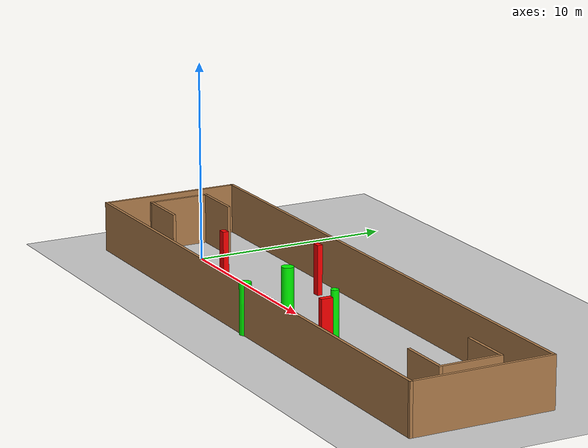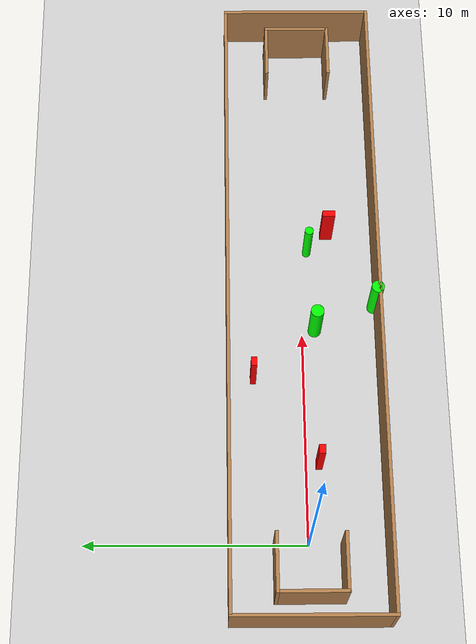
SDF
<sdf version="1.7">
 <world name="default">
  <light name="sun" type="directional">
   <pose>0 0 10 0 -0 0</pose>
   <diffuse>0.8 0.8 0.8 1</diffuse>
   <specular>0.2 0.2 0.2 1</specular>
   <attenuation>
    <range>1000</range>
    <constant>0.9</constant>
    <linear>0.01</linear>
    <quadratic>0.001</quadratic>
   </attenuation>
   <direction>-0.5 0.1 -0.9</direction>
   <spot><inner_angle>0</inner_angle><outer_angle>0</outer_angle><falloff>0</falloff></spot>
  </light>
  <model name="ground_plane">
   <static>1</static>
   <link name="link">
    <collision name="collision">
     <geometry><plane><normal>0 0 1</normal><size>100 100</size></plane></geometry>
     <surface>
      <contact><collide_bitmask>65535</collide_bitmask></contact>
      <friction><ode><mu>100</mu><mu2>50</mu2></ode></friction>
     </surface>
    </collision>
    <visual name="visual">
     <cast_shadows>0</cast_shadows>
     <geometry><plane><normal>0 0 1</normal><size>100 100</size></plane></geometry>
     <material>
      <script><uri>file://media/materials/scripts/gazebo.material</uri><name>Gazebo/Grey</name></script>
     </material>
    </visual>
   </link>
  </model>
  <gravity>0 0 -9.8</gravity>
  <magnetic_field>6e-06 2.3e-05 -4.2e-05</magnetic_field>
  <atmosphere type="adiabatic"/>
  <physics type="ode">
   <max_step_size>0.001</max_step_size>
   <real_time_factor>1</real_time_factor>
   <real_time_update_rate>1000</real_time_update_rate>
  </physics>
  <scene><ambient>0.4 0.4 0.4 1</ambient><background>0.7 0.7 0.7 1</background><shadows>1</shadows></scene>
  <spherical_coordinates>
   <surface_model>EARTH_WGS84</surface_model>
   <latitude_deg>0</latitude_deg>
   <longitude_deg>0</longitude_deg>
   <elevation>0</elevation>
   <heading_deg>0</heading_deg>
  </spherical_coordinates>
  <model name="my_base_walls">
   <link name="Wall_0">
    <collision name="Wall_0_Collision">
     <geometry><box><size>7.15 0.15 2.5</size></box></geometry>
     <pose>0 0 1.25 0 -0 0</pose>
    </collision>
    <visual name="Wall_0_Visual">
     <pose>0 0 1.25 0 -0 0</pose>
     <geometry><box><size>7.15 0.15 2.5</size></box></geometry>
     <material>
      <script><uri>file://media/materials/scripts/gazebo.material</uri><name>Gazebo/Wood</name></script>
      <ambient>1 1 1 1</ambient>
     </material>
     <meta><layer>0</layer></meta>
    </visual>
    <pose>-15 0 0 0 -0 1.5708</pose>
   </link>
   <link name="Wall_10">
    <collision name="Wall_10_Collision">
     <geometry><box><size>2.65 0.15 2.5</size></box></geometry>
     <pose>0 0 1.25 0 -0 0</pose>
    </collision>
    <visual name="Wall_10_Visual">
     <pose>0 0 1.25 0 -0 0</pose>
     <geometry><box><size>2.65 0.15 2.5</size></box></geometry>
     <material>
      <script><uri>file://media/materials/scripts/gazebo.material</uri><name>Gazebo/Wood</name></script>
      <ambient>1 1 1 1</ambient>
     </material>
     <meta><layer>0</layer></meta>
    </visual>
    <pose>-12.75 -1.5 0 0 -0 0</pose>
   </link>
   <link name="Wall_12">
    <collision name="Wall_12_Collision">
     <geometry><box><size>2.65 0.15 2.5</size></box></geometry>
     <pose>0 0 1.25 0 -0 0</pose>
    </collision>
    <visual name="Wall_12_Visual">
     <pose>0 0 1.25 0 -0 0</pose>
     <geometry><box><size>2.65 0.15 2.5</size></box></geometry>
     <material>
      <script><uri>file://media/materials/scripts/gazebo.material</uri><name>Gazebo/Wood</name></script>
      <ambient>1 1 1 1</ambient>
     </material>
     <meta><layer>0</layer></meta>
    </visual>
    <pose>-12.75 1.5 0 0 -0 0</pose>
   </link>
   <link name="Wall_14">
    <collision name="Wall_14_Collision">
     <geometry><box><size>3.15 0.15 2.5</size></box></geometry>
     <pose>0 0 1.25 0 -0 0</pose>
    </collision>
    <visual name="Wall_14_Visual">
     <pose>0 0 1.25 0 -0 0</pose>
     <geometry><box><size>3.15 0.15 2.5</size></box></geometry>
     <material>
      <script><uri>file://media/materials/scripts/gazebo.material</uri><name>Gazebo/Wood</name></script>
      <ambient>1 1 1 1</ambient>
     </material>
     <meta><layer>0</layer></meta>
    </visual>
    <pose>14 0 0 0 -0 -1.5708</pose>
   </link>
   <link name="Wall_15">
    <collision name="Wall_15_Collision">
     <geometry><box><size>2.65 0.15 2.5</size></box></geometry>
     <pose>0 0 1.25 0 -0 0</pose>
    </collision>
    <visual name="Wall_15_Visual">
     <pose>0 0 1.25 0 -0 0</pose>
     <geometry><box><size>2.65 0.15 2.5</size></box></geometry>
     <material>
      <script><uri>file://media/materials/scripts/gazebo.material</uri><name>Gazebo/Wood</name></script>
      <ambient>1 1 1 1</ambient>
     </material>
     <meta><layer>0</layer></meta>
    </visual>
    <pose>12.75 -1.5 0 0 -0 3.14159</pose>
   </link>
   <link name="Wall_17">
    <collision name="Wall_17_Collision">
     <geometry><box><size>2.65 0.15 2.5</size></box></geometry>
     <pose>0 0 1.25 0 -0 0</pose>
    </collision>
    <visual name="Wall_17_Visual">
     <pose>0 0 1.25 0 -0 0</pose>
     <geometry><box><size>2.65 0.15 2.5</size></box></geometry>
     <material>
      <script><uri>file://media/materials/scripts/gazebo.material</uri><name>Gazebo/Wood</name></script>
      <ambient>1 1 1 1</ambient>
     </material>
     <meta><layer>0</layer></meta>
    </visual>
    <pose>12.75 1.5 0 0 -0 3.14159</pose>
   </link>
   <link name="Wall_2">
    <collision name="Wall_2_Collision">
     <geometry><box><size>30.15 0.15 2.5</size></box></geometry>
     <pose>0 0 1.25 0 -0 0</pose>
    </collision>
    <visual name="Wall_2_Visual">
     <pose>0 0 1.25 0 -0 0</pose>
     <geometry><box><size>30.15 0.15 2.5</size></box></geometry>
     <material>
      <script><uri>file://media/materials/scripts/gazebo.material</uri><name>Gazebo/Wood</name></script>
      <ambient>1 1 1 1</ambient>
     </material>
     <meta><layer>0</layer></meta>
    </visual>
    <pose>-0 -3.5 0 0 -0 0</pose>
   </link>
   <link name="Wall_4">
    <collision name="Wall_4_Collision">
     <geometry><box><size>30.15 0.15 2.5</size></box></geometry>
     <pose>0 0 1.25 0 -0 0</pose>
    </collision>
    <visual name="Wall_4_Visual">
     <pose>0 0 1.25 0 -0 0</pose>
     <geometry><box><size>30.15 0.15 2.5</size></box></geometry>
     <material>
      <script><uri>file://media/materials/scripts/gazebo.material</uri><name>Gazebo/Wood</name></script>
      <ambient>1 1 1 1</ambient>
     </material>
     <meta><layer>0</layer></meta>
    </visual>
    <pose>-0 3.5 0 0 -0 0</pose>
   </link>
   <link name="Wall_6">
    <collision name="Wall_6_Collision">
     <geometry><box><size>7.15 0.15 2.5</size></box></geometry>
     <pose>0 0 1.25 0 -0 0</pose>
    </collision>
    <visual name="Wall_6_Visual">
     <pose>0 0 1.25 0 -0 0</pose>
     <geometry><box><size>7.15 0.15 2.5</size></box></geometry>
     <material>
      <script><uri>file://media/materials/scripts/gazebo.material</uri><name>Gazebo/Wood</name></script>
      <ambient>1 1 1 1</ambient>
     </material>
     <meta><layer>0</layer></meta>
    </visual>
    <pose>15 0 0 0 -0 -1.5708</pose>
   </link>
   <link name="Wall_9">
    <collision name="Wall_9_Collision">
     <geometry><box><size>3.15 0.15 2.5</size></box></geometry>
     <pose>0 0 1.25 0 -0 0</pose>
    </collision>
    <visual name="Wall_9_Visual">
     <pose>0 0 1.25 0 -0 0</pose>
     <geometry><box><size>3.15 0.15 2.5</size></box></geometry>
     <material>
      <script><uri>file://media/materials/scripts/gazebo.material</uri><name>Gazebo/Wood</name></script>
      <ambient>1 1 1 1</ambient>
     </material>
     <meta><layer>0</layer></meta>
    </visual>
    <pose>-14 0 0 0 -0 -1.5708</pose>
   </link>
   <static>1</static>
   <pose>11.5 0 0 0 -0 0</pose>
  </model>
  <model name="cylinder1">
   <static>1</static>
   <link name="link">
    <inertial>
     <mass>1</mass>
     <inertia><ixx>0.5</ixx><ixy>0</ixy><ixz>0</ixz><iyy>0.5</iyy><iyz>0</iyz><izz>1</izz></inertia>
    </inertial>
    <collision name="collision">
     <geometry><cylinder><radius>0.30275414218405916</radius><length>2.5</length></cylinder></geometry>
    </collision>
    <visual name="visual">
     <geometry><cylinder><radius>0.30275414218405916</radius><length>2.5</length></cylinder></geometry>
     <material>
      <ambient>0 1 0 1</ambient>
      <diffuse>0 1 0 1</diffuse>
      <specular>0.1 0.1 0.1 1</specular>
      <emissive>0 0 0 0</emissive>
     </material>
    </visual>
   </link>
   <pose>10.238053031066176 -0.582412771323201 1.25 0 0 0</pose>
  </model>
  <model name="cylinder2">
   <static>1</static>
   <link name="link">
    <inertial>
     <mass>1</mass>
     <inertia><ixx>0.5</ixx><ixy>0</ixy><ixz>0</ixz><iyy>0.5</iyy><iyz>0</iyz><izz>1</izz></inertia>
    </inertial>
    <collision name="collision">
     <geometry><cylinder><radius>0.29057551476883925</radius><length>2.5</length></cylinder></geometry>
    </collision>
    <visual name="visual">
     <geometry><cylinder><radius>0.29057551476883925</radius><length>2.5</length></cylinder></geometry>
     <material>
      <ambient>0 1 0 1</ambient>
      <diffuse>0 1 0 1</diffuse>
      <specular>0.1 0.1 0.1 1</specular>
      <emissive>0 0 0 0</emissive>
     </material>
    </visual>
   </link>
   <pose>11.42995354655595 -3.3956184864386874 1.25 0 0 0</pose>
  </model>
  <model name="cylinder3">
   <static>1</static>
   <link name="link">
    <inertial>
     <mass>1</mass>
     <inertia><ixx>0.5</ixx><ixy>0</ixy><ixz>0</ixz><iyy>0.5</iyy><iyz>0</iyz><izz>1</izz></inertia>
    </inertial>
    <collision name="collision">
     <geometry><cylinder><radius>0.19649059293288804</radius><length>2.5</length></cylinder></geometry>
    </collision>
    <visual name="visual">
     <geometry><cylinder><radius>0.19649059293288804</radius><length>2.5</length></cylinder></geometry>
     <material>
      <ambient>0 1 0 1</ambient>
      <diffuse>0 1 0 1</diffuse>
      <specular>0.1 0.1 0.1 1</specular>
      <emissive>0 0 0 0</emissive>
     </material>
    </visual>
   </link>
   <pose>14.29133727021075 -0.3184175657588453 1.25 0 0 0</pose>
  </model>
  <model name="box1">
   <static>1</static>
   <link name="link">
    <inertial>
     <mass>1</mass>
     <inertia><ixx>0.083</ixx><ixy>0</ixy><ixz>0</ixz><iyy>0.083</iyy><iyz>0</iyz><izz>0.083</izz></inertia>
    </inertial>
    <collision name="collision">
     <geometry><box><size>0.2827722546741494 0.5808913181095803 2.5</size></box></geometry>
    </collision>
    <visual name="visual">
     <geometry><box><size>0.2827722546741494 0.5808913181095803 2.5</size></box></geometry>
     <material>
      <ambient>1 0 0 1</ambient>
      <diffuse>1 0 0 1</diffuse>
      <specular>0.1 0.1 0.1 1</specular>
      <emissive>0 0 0 0</emissive>
     </material>
    </visual>
    <sensor name="my_contact" type="contact">
     <contact><collision>box_collision</collision><topic>__default_topic__</topic></contact>
    </sensor>
   </link>
   <pose>15.18306452321243 -1.267492071847275 1.25 0 0 0</pose>
  </model>
  <model name="box2">
   <static>1</static>
   <link name="link">
    <inertial>
     <mass>1</mass>
     <inertia><ixx>0.083</ixx><ixy>0</ixy><ixz>0</ixz><iyy>0.083</iyy><iyz>0</iyz><izz>0.083</izz></inertia>
    </inertial>
    <collision name="collision">
     <geometry><box><size>0.40012109974521837 0.29032779464528774 2.5</size></box></geometry>
    </collision>
    <visual name="visual">
     <geometry><box><size>0.40012109974521837 0.29032779464528774 2.5</size></box></geometry>
     <material>
      <ambient>1 0 0 1</ambient>
      <diffuse>1 0 0 1</diffuse>
      <specular>0.1 0.1 0.1 1</specular>
      <emissive>0 0 0 0</emissive>
     </material>
    </visual>
    <sensor name="my_contact" type="contact">
     <contact><collision>box_collision</collision><topic>__default_topic__</topic></contact>
    </sensor>
   </link>
   <pose>3.697335160576646 -0.5868847757945783 1.25 0 0 0</pose>
  </model>
  <model name="box3">
   <static>1</static>
   <link name="link">
    <inertial>
     <mass>1</mass>
     <inertia><ixx>0.083</ixx><ixy>0</ixy><ixz>0</ixz><iyy>0.083</iyy><iyz>0</iyz><izz>0.083</izz></inertia>
    </inertial>
    <collision name="collision">
     <geometry><box><size>0.4024770394722397 0.2612915156212809 2.5</size></box></geometry>
    </collision>
    <visual name="visual">
     <geometry><box><size>0.4024770394722397 0.2612915156212809 2.5</size></box></geometry>
     <material>
      <ambient>1 0 0 1</ambient>
      <diffuse>1 0 0 1</diffuse>
      <specular>0.1 0.1 0.1 1</specular>
      <emissive>0 0 0 0</emissive>
     </material>
    </visual>
    <sensor name="my_contact" type="contact">
     <contact><collision>box_collision</collision><topic>__default_topic__</topic></contact>
    </sensor>
   </link>
   <pose>7.799234535497515 2.34653063721456 1.25 0 0 0</pose>
  </model>
 </world>
</sdf>
